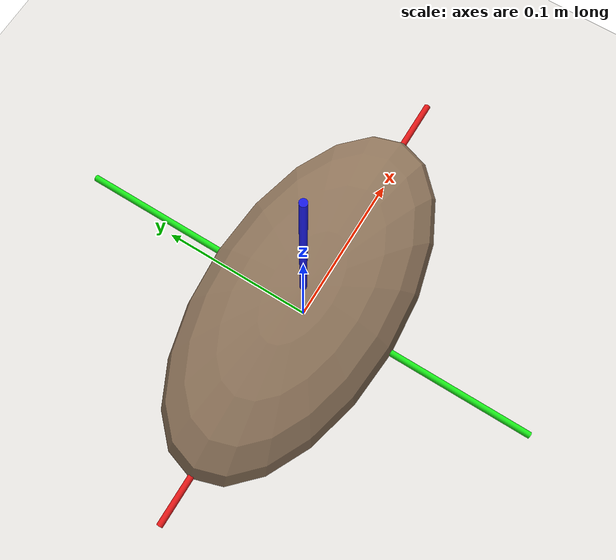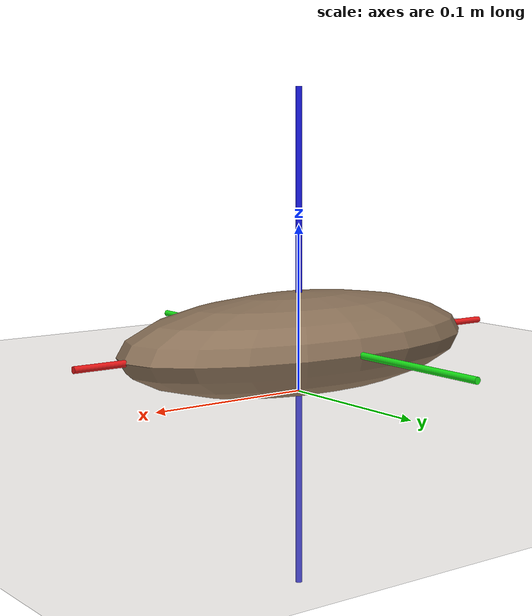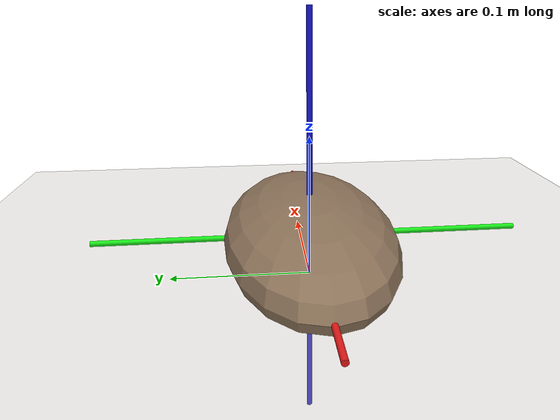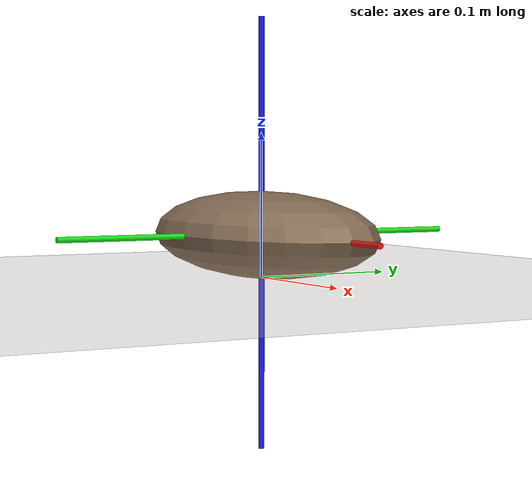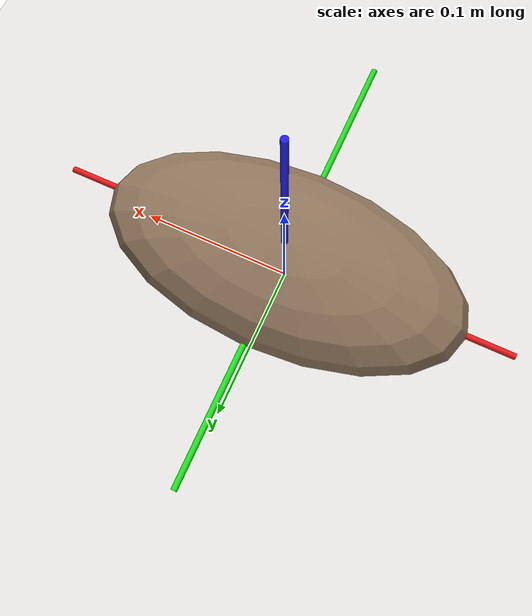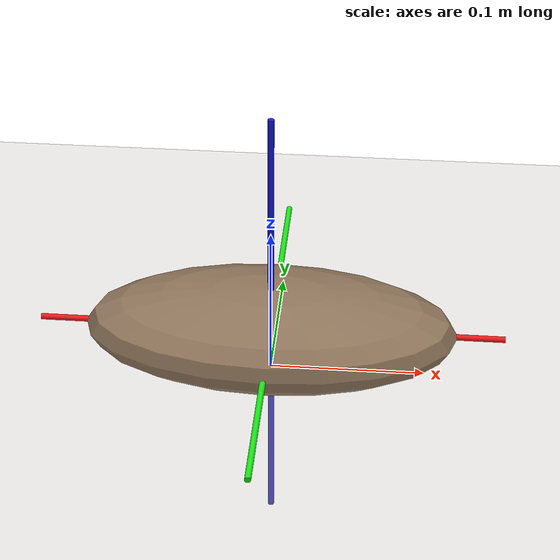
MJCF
<mujoco model="rattleback">

  <!-- 0.5 ms timestep + RK4 gives accurate rigid-body / contact dynamics -->
  <option timestep="0.0005" integrator="RK4" gravity="0 0 -9.81"
          cone="elliptic"/>

  <visual>
    <global offwidth="1280" offheight="720"/>
  </visual>

  <asset>

    <texture name="floor_tex" type="2d" file="../images/dc-engineer-logo-transparent.png"/>
    <material name="floor_mat" texture="floor_tex" texrepeat="1 1"
              texuniform="false" reflectance="0.10"/>
    <material name="stone_mat" rgba="0.55 0.45 0.35 1"
              reflectance="0.25" specular="0.5" shininess="0.5"/>
    <material name="x_mat" rgba="0.9 0.1 0.1 1" reflectance="0.25" specular="0.5" shininess="0.5"/>
    <material name="y_mat" rgba="0.1 0.9 0.1 1" reflectance="0.25" specular="0.5" shininess="0.5"/>
    <material name="z_mat" rgba="0.1 0.1 0.9 1" reflectance="0.25" specular="0.5" shininess="0.5"/>
  </asset>

  <worldbody>
    <light name="sun"  directional="true" pos="1 -1 4"
           dir="-0.3 0.3 -1"  diffuse="0.85 0.85 0.80" specular="0.05 0.05 0.05"/>

    <!-- Ground plane; friction = [sliding, torsional, rolling] -->
    <geom name="floor" type="plane" size="0.628 0.628 0.1"
          material="floor_mat" friction="0.8 0.005 0.0001"/>

    <!-- Rattleback: free rigid body sitting on the ground -->
    <body name="rattleback" pos="0 0 0.03">
      <freejoint name="root"/>
      <geom name="stone" type="ellipsoid" size="0.12 0.06 0.03"
            material="stone_mat" rgba="0.55 0.45 0.35 1" friction="0.8 0.005 0.0001"
            solref="0.008 1" solimp="0.9 0.95 0.001"/>

      <!-- visualization-only axes, to show the principal inertia directions -->
      <geom name="x" type="cylinder" size="0.002 0.15" pos="0 0 0" euler="0 90 0"
            material="x_mat" rgba="0.9 0.1 0.1 1" contype="0" conaffinity="0"/>
      <geom name="y" type="cylinder" size="0.002 0.15" pos="0 0 0" euler="90 0 0"
            material="y_mat" rgba="0.1 0.9 0.1 1" contype="0" conaffinity="0"/>
      <geom name="z" type="cylinder" size="0.002 0.15" pos="0 0 0" euler="0 0 90"
            material="z_mat" rgba="0.1 0.1 0.9 1" contype="0" conaffinity="0"/>

      <!-- euler="0 0 20" tilts the principal-inertia frame 20° about body-z, introducing I_xy coupling -->
      <inertial pos="0 0 0" mass="0.5"
                diaginertia="4.5e-4 1.53e-3 1.8e-3"
                euler="0 0 20"/>
    </body>
  </worldbody>

</mujoco>
